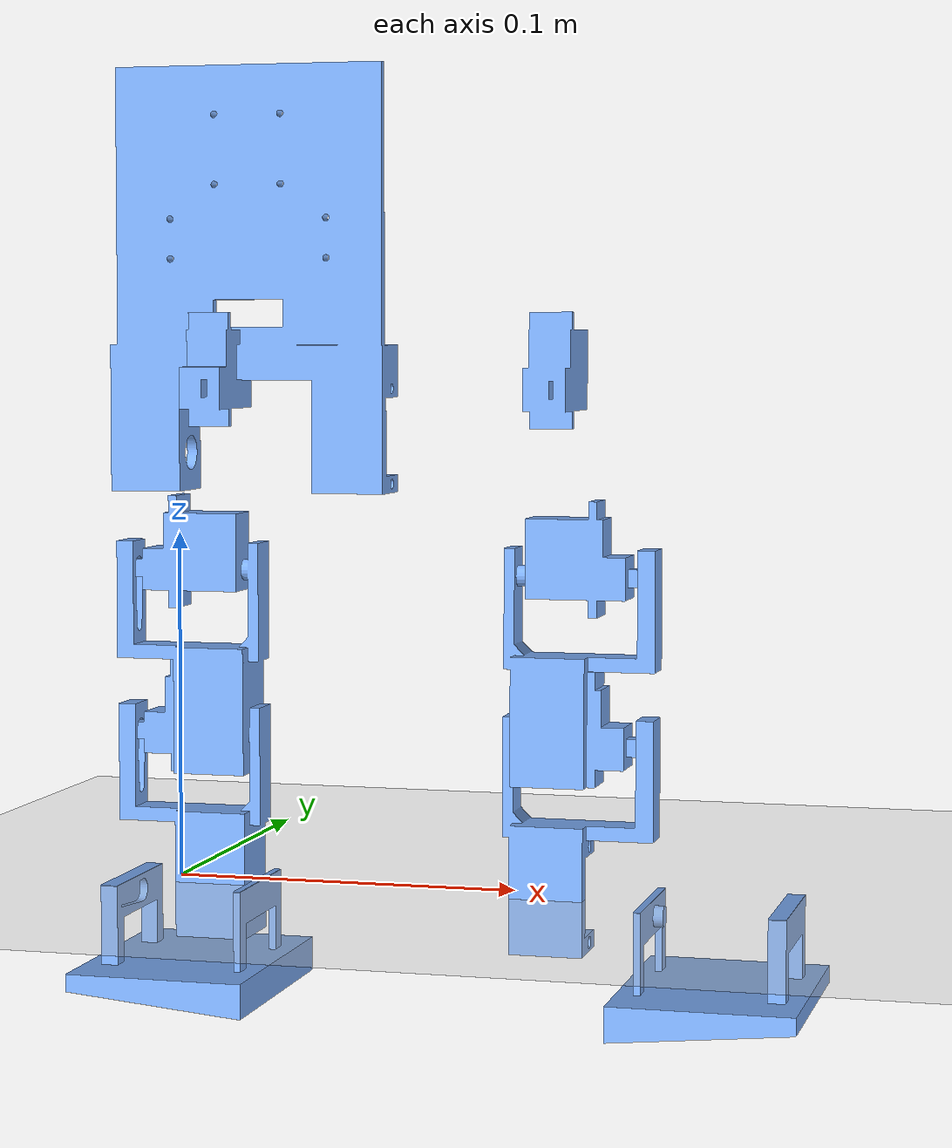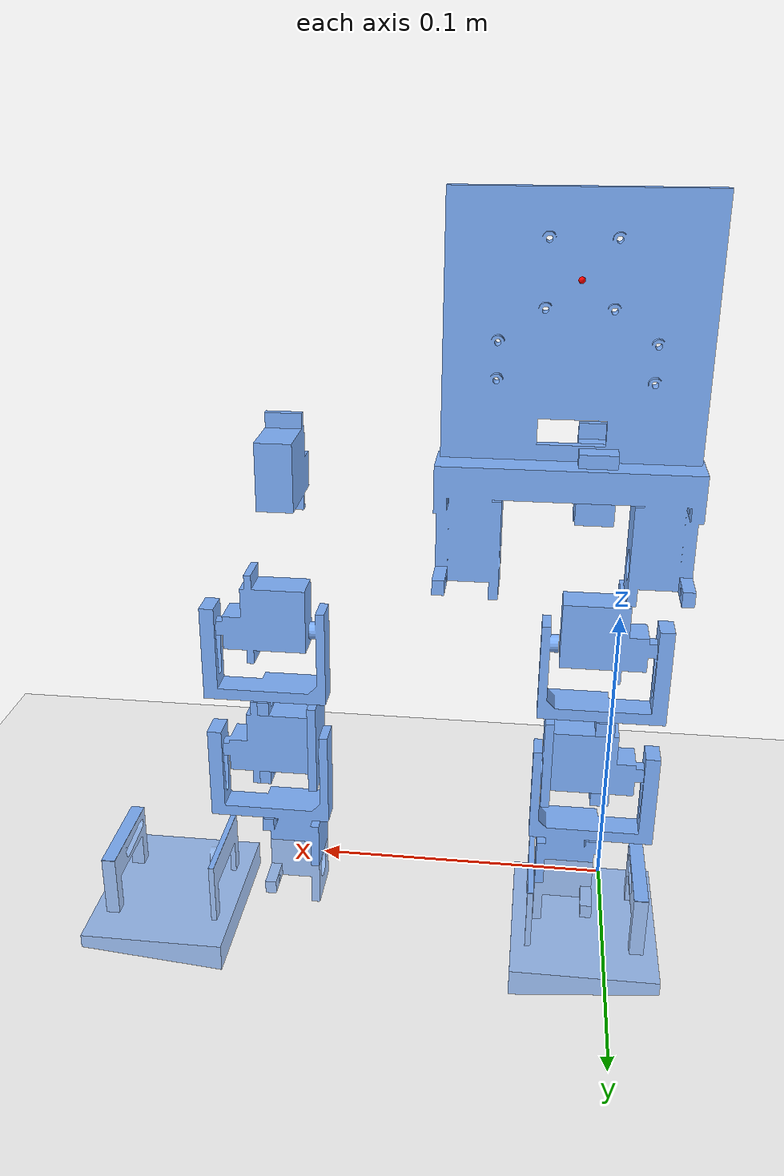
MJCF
<?xml version="1.0" ?>
<mujoco model="rickv3_v25">
  <compiler angle="radian"/>

  <default>
    <mesh scale="0.001 0.001 0.001"/>
    <geom rgba="0.5 0.7 1.0 1" contype="0" conaffinity="0"/>
    <joint damping="0.002" range="-1.5 1.5" armature="0.0005"/>
    <position kp="0.5" kv="0.02" forcelimited="true" forcerange="-0.2 0.2" ctrllimited="true" ctrlrange="-1.57 1.57"/>
  </default>
  <asset>
    <mesh file="meshes/Untitled_v8_1.stl" name="Untitled_v8_1_mesh"/>
    <mesh file="meshes/servo_v10_1.stl" name="servo_v10_1_mesh"/>
    <mesh file="meshes/leg2Derived_v5_1.stl" name="leg2Derived_v5_1_mesh"/>
    <mesh file="meshes/servo_v10_2.stl" name="servo_v10_2_mesh"/>
    <mesh file="meshes/leg2Derived_v5_2.stl" name="leg2Derived_v5_2_mesh"/>
    <mesh file="meshes/servo_v10_3.stl" name="servo_v10_3_mesh"/>
    <mesh file="meshes/footDerived_v6_1.stl" name="footDerived_v6_1_mesh"/>
    <mesh file="meshes/servo_v10_6.stl" name="servo_v10_6_mesh"/>
    <mesh file="meshes/legMirrorDerived_v6_1.stl" name="legMirrorDerived_v6_1_mesh"/>
    <mesh file="meshes/servo_v10_4.stl" name="servo_v10_4_mesh"/>
    <mesh file="meshes/legMirrorDerived_v6_2.stl" name="legMirrorDerived_v6_2_mesh"/>
    <mesh file="meshes/servo_v10_5.stl" name="servo_v10_5_mesh"/>
    <mesh file="meshes/foorMirrorDerived_v9_1.stl" name="foorMirrorDerived_v9_1_mesh"/>
  </asset>
  <actuator>
    <position name="leg2Derived_v5_1Revolute_28" joint="leg2Derived_v5_1Revolute_28"/>
    <position name="leg2Derived_v5_2Revolute_30" joint="leg2Derived_v5_2Revolute_30"/>
    <position name="footDerived_v6_1Revolute_32" joint="footDerived_v6_1Revolute_32"/>
    <position name="leftHip" joint="leftHip"/>
    <position name="legMirrorDerived_v6_2Revolute_36" joint="legMirrorDerived_v6_2Revolute_36"/>
    <position name="foorMirrorDerived_v9_1Revolute_38" joint="foorMirrorDerived_v9_1Revolute_38"/>
  </actuator>

  <sensor>
    <gyro name="gyro" site="imu_site"/>
    <accelerometer name="accel" site="imu_site"/>
    <framequat name="orientation" objtype="site" objname="imu_site"/>
  </sensor>

  <worldbody>
    <geom name="floor" size="0 0 .05" type="plane" condim="3" rgba="0.9 0.9 0.9 1" contype="1" conaffinity="1"/>
    <light mode="targetbodycom" target="body" diffuse=".8 .8 .8" specular="0.3 0.3 0.3" pos="0 -6 4" cutoff="30"/>
    <body name="body" pos="0 0 0.111891">
      <freejoint name="root"/>
      <site name="imu_site" pos="0.02 0.0085 0.097" size="0.001" rgba="1 0 0 1"/>
      <geom density="500" type="mesh" mesh="Untitled_v8_1_mesh"/>
      <body name="servo_v10_1">
        <geom mass="0.013" type="mesh" mesh="servo_v10_1_mesh"/>
        <body name="leg2Derived_v5_1">
          <joint axis="1 0 0" name="leg2Derived_v5_1Revolute_28" type="hinge" pos="-0.0370 0.0100 0.0109"/>
          <geom density="500" type="mesh" mesh="leg2Derived_v5_1_mesh"/>
          <body name="servo_v10_2">
            <geom mass="0.013" type="mesh" mesh="servo_v10_2_mesh"/>
            <body name="leg2Derived_v5_2">
              <joint axis="1 0 0" name="leg2Derived_v5_2Revolute_30" type="hinge" pos="-0.0367 0.0100 -0.0365"/>
              <geom density="500" type="mesh" mesh="leg2Derived_v5_2_mesh"/>
              <body name="servo_v10_3">
                <geom mass="0.013" type="mesh" mesh="servo_v10_3_mesh"/>
                <body name="footDerived_v6_1">
                  <joint axis="1 0 0" name="footDerived_v6_1Revolute_32" type="hinge" pos="-0.0367 0.0100 -0.0839"/>
                  <geom density="500" type="mesh" mesh="footDerived_v6_1_mesh" contype="1" conaffinity="1"  friction="1.5 0.1 0.001" solref="0.02 1"/>
                </body>
              </body>
            </body>
          </body>
        </body>
      </body>
      <body name="servo_v10_6">
        <geom mass="0.013" type="mesh" mesh="servo_v10_6_mesh"/>
        <body name="legMirrorDerived_v6_1">
          <joint axis="1 0 0" name="leftHip" type="hinge" pos="-0.0370 0.0100 0.0109"/>
          <geom density="500" type="mesh" mesh="legMirrorDerived_v6_1_mesh"/>
          <body name="servo_v10_4">
            <geom mass="0.013" type="mesh" mesh="servo_v10_4_mesh"/>
            <body name="legMirrorDerived_v6_2">
              <joint axis="1 0 0" name="legMirrorDerived_v6_2Revolute_36" type="hinge" pos="0.0767 0.0100 -0.0365"/>
              <geom density="500" type="mesh" mesh="legMirrorDerived_v6_2_mesh"/>
              <body name="servo_v10_5">
                <geom mass="0.013" type="mesh" mesh="servo_v10_5_mesh"/>
                <body name="foorMirrorDerived_v9_1">
                  <joint axis="1 0 0" name="foorMirrorDerived_v9_1Revolute_38" type="hinge" pos="0.0767 0.0100 -0.0839"/>
                  <geom density="500" type="mesh" mesh="foorMirrorDerived_v9_1_mesh" contype="1" conaffinity="1"  friction="1.5 0.1 0.001" solref="0.02 1" />
                </body>
              </body>
            </body>
          </body>
        </body>
      </body>
    </body>
    <camera name="track" mode="trackcom" pos="0 -2.1 0.5" xyaxes="1 0 0 0 0.2 1" target="body"/>
  </worldbody>
</mujoco>
